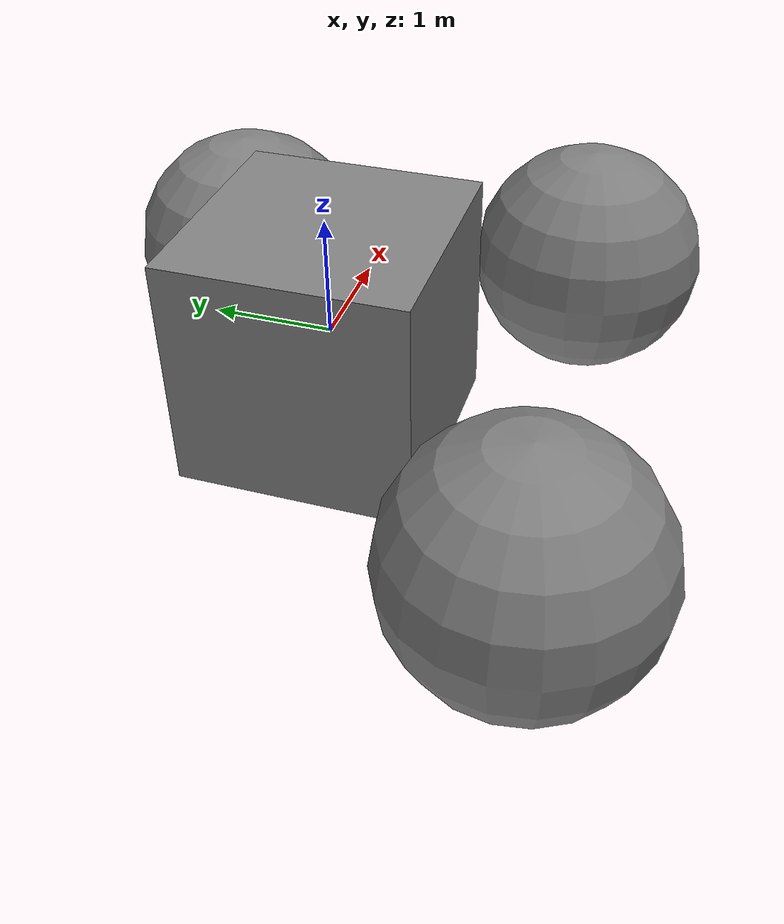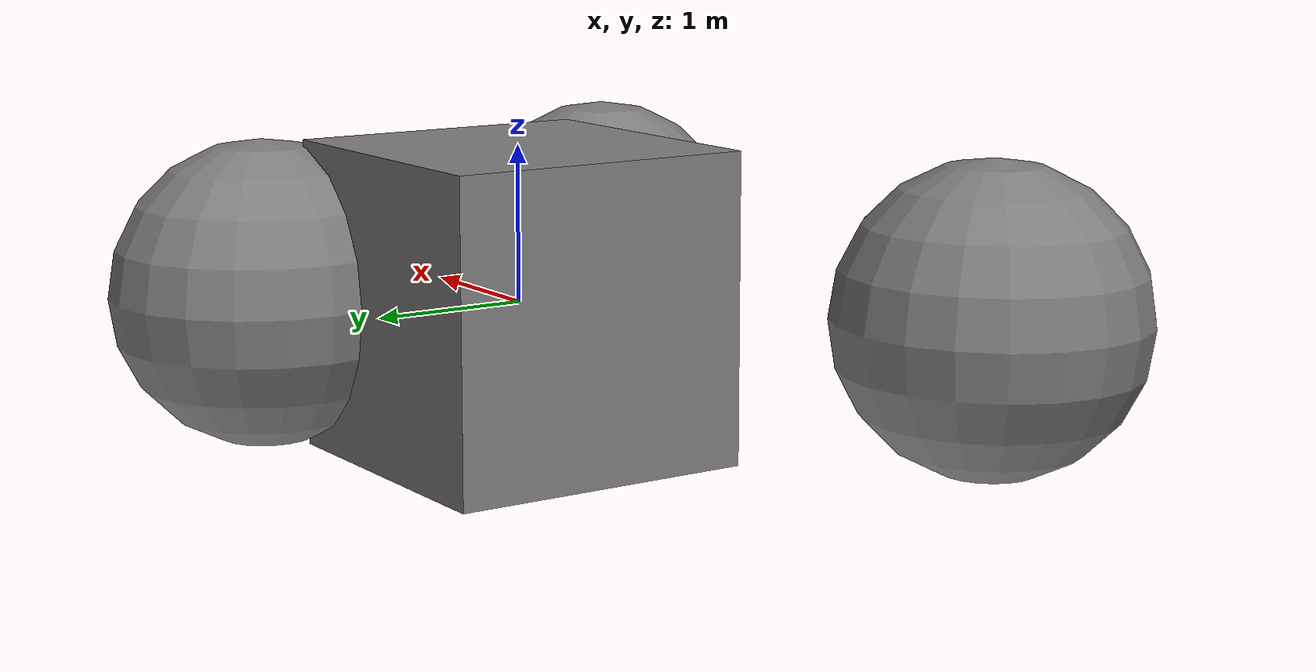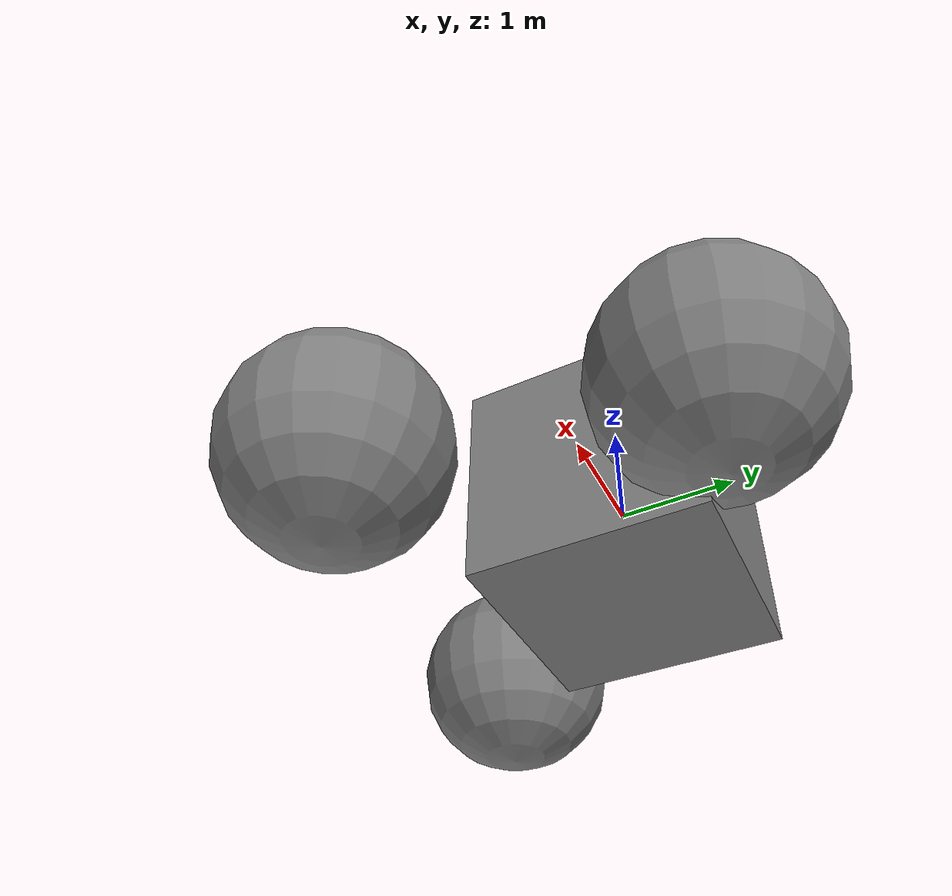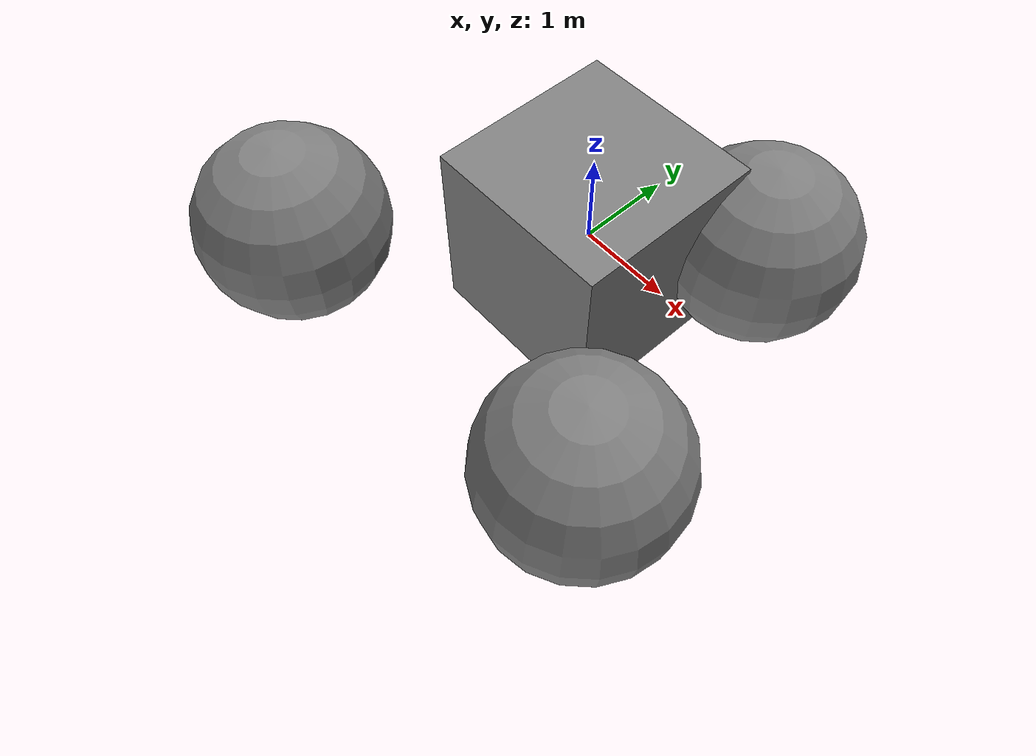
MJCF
<mujoco model="collisions">
  <worldbody>
    <body name="box">
      <geom name="box" type="box" size="1 1 1"/>
    </body>
    <body pos="1.2 1.2 0.0">
      <!-- collides with box -->
      <joint/>
      <geom name="sphere_collides" type="sphere" size="1"/>
    </body>
    <body pos="-0.9 -0.9 0.0">
      <!-- collides with box, and is a predefined pair -->
      <joint/>
      <geom name="sphere_predefined" type="sphere"  size="0.1"/>
    </body>
    <body pos="1.8 -1.8 0.0" >
      <!-- doesn't collide with box, but requires narrowphase checking -->
      <joint/>
      <geom name="sphere_narrowphase" type="sphere" size="1"/>
    </body>
    <body pos="-2.1 -2.1 0.0">
      <!-- doesn't collide with box, and can be eliminated in broadphase -->
      <joint/>
      <geom name="sphere_broadphase" type="sphere" size="1"/>
    </body>
    <body name="sphere_excluded">
      <!-- collides with box, but is excluded -->
      <joint/>
      <geom name="sphere_excluded" type="sphere" pos="0.0 0.0 0.0" size="0.2"/>
    </body>
  </worldbody>
  <contact>
    <exclude body1="box" body2="sphere_excluded"/>
    <pair geom1="box" geom2="sphere_predefined"/>
  </contact>
</mujoco>
